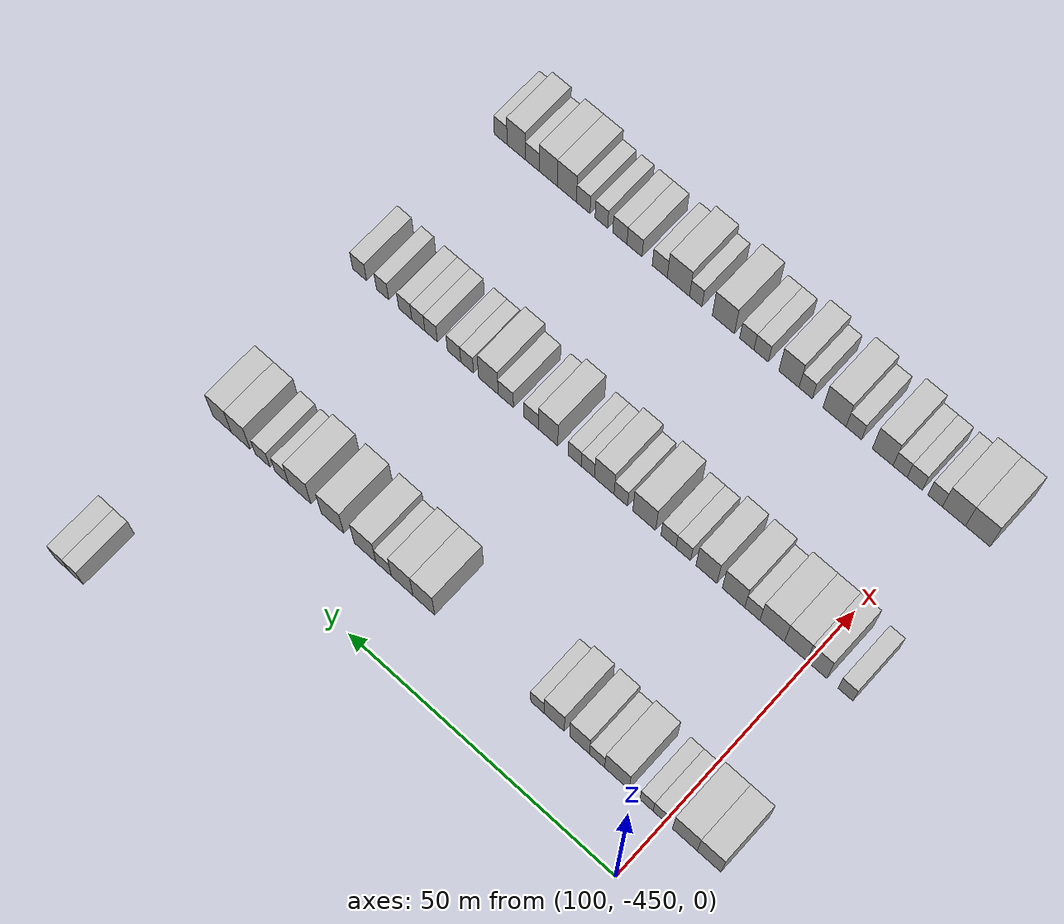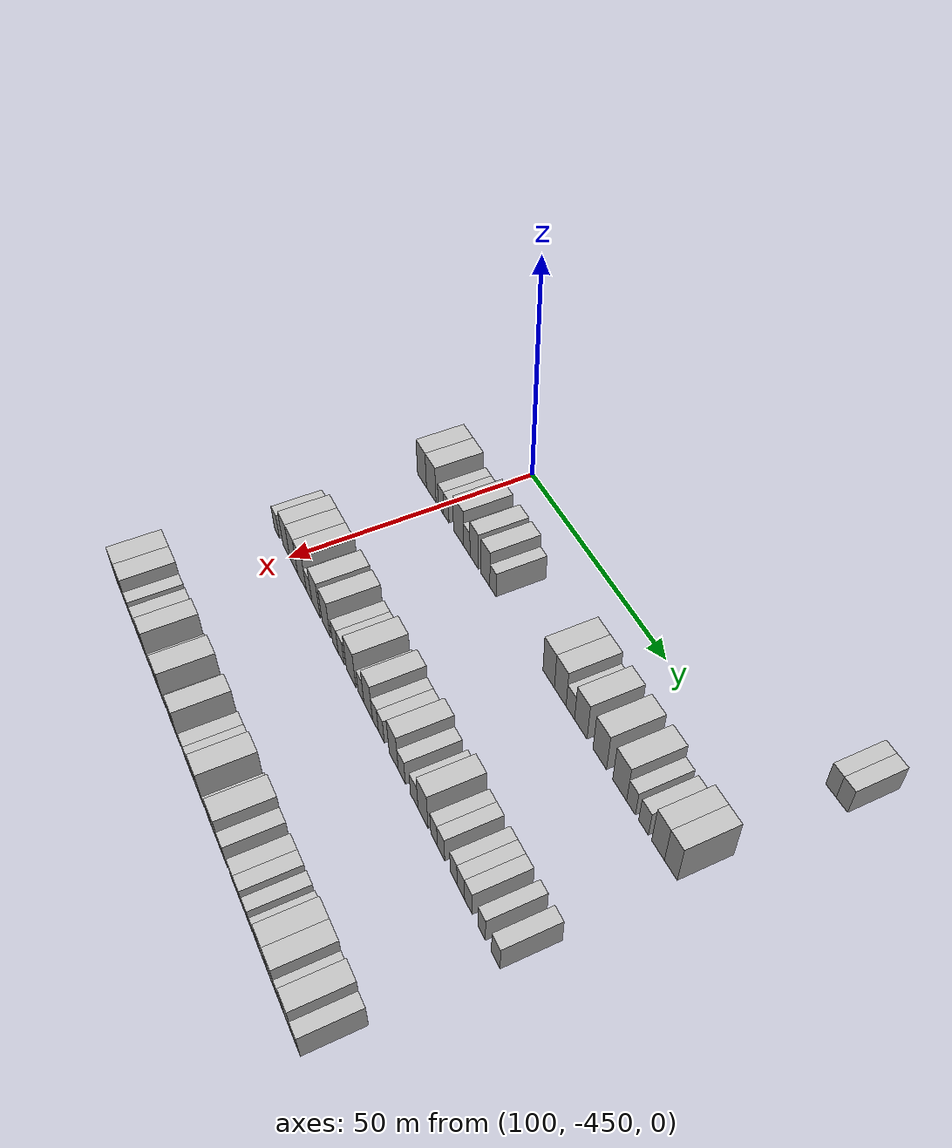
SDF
<sdf version="1.6">
 <world name="default">
  <model name="building_484">
   <static>1</static>
   <pose>85.0000 -366.2962 0 0.000000 0.000000 0.000000</pose>
   <link name="link">
    <pose>0 0 3.00 0 0 0</pose>
    <collision name="collision"><geometry><box><size>10.0000 2.7749 6.0000</size></box></geometry></collision>
    <visual name="visual">
     <cast_shadows>0</cast_shadows>
     <geometry><box><size>10.0000 2.7749 6.0000</size></box></geometry>
     <material>
      <script>
       <uri>model://HANNAS_wall/materials/scripts</uri>
       <uri>model://HANNAS_wall/materials/textures</uri>
       <name>vrc/HANNAS_wall</name>
      </script>
     </material>
    </visual>
   </link>
  </model>
  <model name="building_485">
   <static>1</static>
   <pose>85.0000 -363.4157 0 0.000000 0.000000 0.000000</pose>
   <link name="link">
    <pose>0 0 3.00 0 0 0</pose>
    <collision name="collision"><geometry><box><size>10.0000 2.9860 6.0000</size></box></geometry></collision>
    <visual name="visual">
     <cast_shadows>0</cast_shadows>
     <geometry><box><size>10.0000 2.9860 6.0000</size></box></geometry>
     <material>
      <script>
       <uri>model://HANNAS_wall/materials/scripts</uri>
       <uri>model://HANNAS_wall/materials/textures</uri>
       <name>vrc/HANNAS_wall</name>
      </script>
     </material>
    </visual>
   </link>
  </model>
  <model name="building_696">
   <static>1</static>
   <pose>115.0000 -457.8770 0 0.000000 0.000000 0.000000</pose>
   <link name="link">
    <pose>0 0 4.50 0 0 0</pose>
    <collision name="collision"><geometry><box><size>10.0000 4.2461 9.0000</size></box></geometry></collision>
    <visual name="visual">
     <cast_shadows>0</cast_shadows>
     <geometry><box><size>10.0000 4.2461 9.0000</size></box></geometry>
     <material>
      <script>
       <uri>model://HANNAS_wall/materials/scripts</uri>
       <uri>model://HANNAS_wall/materials/textures</uri>
       <name>vrc/HANNAS_wall</name>
      </script>
     </material>
    </visual>
   </link>
  </model>
  <model name="building_697">
   <static>1</static>
   <pose>115.0000 -453.5131 0 0.000000 0.000000 0.000000</pose>
   <link name="link">
    <pose>0 0 4.50 0 0 0</pose>
    <collision name="collision"><geometry><box><size>10.0000 4.4817 9.0000</size></box></geometry></collision>
    <visual name="visual">
     <cast_shadows>0</cast_shadows>
     <geometry><box><size>10.0000 4.4817 9.0000</size></box></geometry>
     <material>
      <script>
       <uri>model://HANNAS_wall/materials/scripts</uri>
       <uri>model://HANNAS_wall/materials/textures</uri>
       <name>vrc/HANNAS_wall</name>
      </script>
     </material>
    </visual>
   </link>
  </model>
  <model name="building_698">
   <static>1</static>
   <pose>115.0000 -449.0188 0 0.000000 0.000000 0.000000</pose>
   <link name="link">
    <pose>0 0 3.00 0 0 0</pose>
    <collision name="collision"><geometry><box><size>10.0000 2.5068 6.0000</size></box></geometry></collision>
    <visual name="visual">
     <cast_shadows>0</cast_shadows>
     <geometry><box><size>10.0000 2.5068 6.0000</size></box></geometry>
     <material>
      <script>
       <uri>model://HANNAS_wall/materials/scripts</uri>
       <uri>model://HANNAS_wall/materials/textures</uri>
       <name>vrc/HANNAS_wall</name>
      </script>
     </material>
    </visual>
   </link>
  </model>
  <model name="building_699">
   <static>1</static>
   <pose>115.0000 -446.5547 0 0.000000 0.000000 0.000000</pose>
   <link name="link">
    <pose>0 0 3.00 0 0 0</pose>
    <collision name="collision"><geometry><box><size>10.0000 2.4214 6.0000</size></box></geometry></collision>
    <visual name="visual">
     <cast_shadows>0</cast_shadows>
     <geometry><box><size>10.0000 2.4214 6.0000</size></box></geometry>
     <material>
      <script>
       <uri>model://HANNAS_wall/materials/scripts</uri>
       <uri>model://HANNAS_wall/materials/textures</uri>
       <name>vrc/HANNAS_wall</name>
      </script>
     </material>
    </visual>
   </link>
  </model>
  <model name="building_700">
   <static>1</static>
   <pose>115.0000 -441.1186 0 0.000000 0.000000 0.000000</pose>
   <link name="link">
    <pose>0 0 4.50 0 0 0</pose>
    <collision name="collision"><geometry><box><size>10.0000 4.4510 9.0000</size></box></geometry></collision>
    <visual name="visual">
     <cast_shadows>0</cast_shadows>
     <geometry><box><size>10.0000 4.4510 9.0000</size></box></geometry>
     <material>
      <script>
       <uri>model://HANNAS_wall/materials/scripts</uri>
       <uri>model://HANNAS_wall/materials/textures</uri>
       <name>vrc/HANNAS_wall</name>
      </script>
     </material>
    </visual>
   </link>
  </model>
  <model name="building_701">
   <static>1</static>
   <pose>115.0000 -437.4976 0 0.000000 0.000000 0.000000</pose>
   <link name="link">
    <pose>0 0 3.00 0 0 0</pose>
    <collision name="collision"><geometry><box><size>10.0000 2.7910 6.0000</size></box></geometry></collision>
    <visual name="visual">
     <cast_shadows>0</cast_shadows>
     <geometry><box><size>10.0000 2.7910 6.0000</size></box></geometry>
     <material>
      <script>
       <uri>model://HANNAS_wall/materials/scripts</uri>
       <uri>model://HANNAS_wall/materials/textures</uri>
       <name>vrc/HANNAS_wall</name>
      </script>
     </material>
    </visual>
   </link>
  </model>
  <model name="building_702">
   <static>1</static>
   <pose>115.0000 -434.2840 0 0.000000 0.000000 0.000000</pose>
   <link name="link">
    <pose>0 0 4.50 0 0 0</pose>
    <collision name="collision"><geometry><box><size>10.0000 3.6361 9.0000</size></box></geometry></collision>
    <visual name="visual">
     <cast_shadows>0</cast_shadows>
     <geometry><box><size>10.0000 3.6361 9.0000</size></box></geometry>
     <material>
      <script>
       <uri>model://HANNAS_wall/materials/scripts</uri>
       <uri>model://HANNAS_wall/materials/textures</uri>
       <name>vrc/HANNAS_wall</name>
      </script>
     </material>
    </visual>
   </link>
  </model>
  <model name="building_703">
   <static>1</static>
   <pose>115.0000 -429.6136 0 0.000000 0.000000 0.000000</pose>
   <link name="link">
    <pose>0 0 4.50 0 0 0</pose>
    <collision name="collision"><geometry><box><size>10.0000 3.7047 9.0000</size></box></geometry></collision>
    <visual name="visual">
     <cast_shadows>0</cast_shadows>
     <geometry><box><size>10.0000 3.7047 9.0000</size></box></geometry>
     <material>
      <script>
       <uri>model://HANNAS_wall/materials/scripts</uri>
       <uri>model://HANNAS_wall/materials/textures</uri>
       <name>vrc/HANNAS_wall</name>
      </script>
     </material>
    </visual>
   </link>
  </model>
  <model name="building_704">
   <static>1</static>
   <pose>115.0000 -426.4851 0 0.000000 0.000000 0.000000</pose>
   <link name="link">
    <pose>0 0 3.00 0 0 0</pose>
    <collision name="collision"><geometry><box><size>10.0000 2.5523 6.0000</size></box></geometry></collision>
    <visual name="visual">
     <cast_shadows>0</cast_shadows>
     <geometry><box><size>10.0000 2.5523 6.0000</size></box></geometry>
     <material>
      <script>
       <uri>model://HANNAS_wall/materials/scripts</uri>
       <uri>model://HANNAS_wall/materials/textures</uri>
       <name>vrc/HANNAS_wall</name>
      </script>
     </material>
    </visual>
   </link>
  </model>
  <model name="building_705">
   <static>1</static>
   <pose>115.0000 -404.9400 0 0.000000 0.000000 0.000000</pose>
   <link name="link">
    <pose>0 0 4.50 0 0 0</pose>
    <collision name="collision"><geometry><box><size>10.0000 4.1793 9.0000</size></box></geometry></collision>
    <visual name="visual">
     <cast_shadows>0</cast_shadows>
     <geometry><box><size>10.0000 4.1793 9.0000</size></box></geometry>
     <material>
      <script>
       <uri>model://HANNAS_wall/materials/scripts</uri>
       <uri>model://HANNAS_wall/materials/textures</uri>
       <name>vrc/HANNAS_wall</name>
      </script>
     </material>
    </visual>
   </link>
  </model>
  <model name="building_706">
   <static>1</static>
   <pose>115.0000 -400.7705 0 0.000000 0.000000 0.000000</pose>
   <link name="link">
    <pose>0 0 4.50 0 0 0</pose>
    <collision name="collision"><geometry><box><size>10.0000 4.1598 9.0000</size></box></geometry></collision>
    <visual name="visual">
     <cast_shadows>0</cast_shadows>
     <geometry><box><size>10.0000 4.1598 9.0000</size></box></geometry>
     <material>
      <script>
       <uri>model://HANNAS_wall/materials/scripts</uri>
       <uri>model://HANNAS_wall/materials/textures</uri>
       <name>vrc/HANNAS_wall</name>
      </script>
     </material>
    </visual>
   </link>
  </model>
  <model name="building_707">
   <static>1</static>
   <pose>115.0000 -397.2098 0 0.000000 0.000000 0.000000</pose>
   <link name="link">
    <pose>0 0 3.00 0 0 0</pose>
    <collision name="collision"><geometry><box><size>10.0000 2.9615 6.0000</size></box></geometry></collision>
    <visual name="visual">
     <cast_shadows>0</cast_shadows>
     <geometry><box><size>10.0000 2.9615 6.0000</size></box></geometry>
     <material>
      <script>
       <uri>model://HANNAS_wall/materials/scripts</uri>
       <uri>model://HANNAS_wall/materials/textures</uri>
       <name>vrc/HANNAS_wall</name>
      </script>
     </material>
    </visual>
   </link>
  </model>
  <model name="building_708">
   <static>1</static>
   <pose>115.0000 -393.5861 0 0.000000 0.000000 0.000000</pose>
   <link name="link">
    <pose>0 0 4.50 0 0 0</pose>
    <collision name="collision"><geometry><box><size>10.0000 4.2858 9.0000</size></box></geometry></collision>
    <visual name="visual">
     <cast_shadows>0</cast_shadows>
     <geometry><box><size>10.0000 4.2858 9.0000</size></box></geometry>
     <material>
      <script>
       <uri>model://HANNAS_wall/materials/scripts</uri>
       <uri>model://HANNAS_wall/materials/textures</uri>
       <name>vrc/HANNAS_wall</name>
      </script>
     </material>
    </visual>
   </link>
  </model>
  <model name="building_709">
   <static>1</static>
   <pose>115.0000 -387.2088 0 0.000000 0.000000 0.000000</pose>
   <link name="link">
    <pose>0 0 4.50 0 0 0</pose>
    <collision name="collision"><geometry><box><size>10.0000 4.4688 9.0000</size></box></geometry></collision>
    <visual name="visual">
     <cast_shadows>0</cast_shadows>
     <geometry><box><size>10.0000 4.4688 9.0000</size></box></geometry>
     <material>
      <script>
       <uri>model://HANNAS_wall/materials/scripts</uri>
       <uri>model://HANNAS_wall/materials/textures</uri>
       <name>vrc/HANNAS_wall</name>
      </script>
     </material>
    </visual>
   </link>
  </model>
  <model name="building_710">
   <static>1</static>
   <pose>115.0000 -380.7611 0 0.000000 0.000000 0.000000</pose>
   <link name="link">
    <pose>0 0 4.50 0 0 0</pose>
    <collision name="collision"><geometry><box><size>10.0000 4.4267 9.0000</size></box></geometry></collision>
    <visual name="visual">
     <cast_shadows>0</cast_shadows>
     <geometry><box><size>10.0000 4.4267 9.0000</size></box></geometry>
     <material>
      <script>
       <uri>model://HANNAS_wall/materials/scripts</uri>
       <uri>model://HANNAS_wall/materials/textures</uri>
       <name>vrc/HANNAS_wall</name>
      </script>
     </material>
    </visual>
   </link>
  </model>
  <model name="building_711">
   <static>1</static>
   <pose>115.0000 -377.1777 0 0.000000 0.000000 0.000000</pose>
   <link name="link">
    <pose>0 0 3.00 0 0 0</pose>
    <collision name="collision"><geometry><box><size>10.0000 2.7401 6.0000</size></box></geometry></collision>
    <visual name="visual">
     <cast_shadows>0</cast_shadows>
     <geometry><box><size>10.0000 2.7401 6.0000</size></box></geometry>
     <material>
      <script>
       <uri>model://HANNAS_wall/materials/scripts</uri>
       <uri>model://HANNAS_wall/materials/textures</uri>
       <name>vrc/HANNAS_wall</name>
      </script>
     </material>
    </visual>
   </link>
  </model>
  <model name="building_712">
   <static>1</static>
   <pose>115.0000 -373.3367 0 0.000000 0.000000 0.000000</pose>
   <link name="link">
    <pose>0 0 3.00 0 0 0</pose>
    <collision name="collision"><geometry><box><size>10.0000 2.9419 6.0000</size></box></geometry></collision>
    <visual name="visual">
     <cast_shadows>0</cast_shadows>
     <geometry><box><size>10.0000 2.9419 6.0000</size></box></geometry>
     <material>
      <script>
       <uri>model://HANNAS_wall/materials/scripts</uri>
       <uri>model://HANNAS_wall/materials/textures</uri>
       <name>vrc/HANNAS_wall</name>
      </script>
     </material>
    </visual>
   </link>
  </model>
  <model name="building_713">
   <static>1</static>
   <pose>115.0000 -368.9628 0 0.000000 0.000000 0.000000</pose>
   <link name="link">
    <pose>0 0 4.50 0 0 0</pose>
    <collision name="collision"><geometry><box><size>10.0000 3.8059 9.0000</size></box></geometry></collision>
    <visual name="visual">
     <cast_shadows>0</cast_shadows>
     <geometry><box><size>10.0000 3.8059 9.0000</size></box></geometry>
     <material>
      <script>
       <uri>model://HANNAS_wall/materials/scripts</uri>
       <uri>model://HANNAS_wall/materials/textures</uri>
       <name>vrc/HANNAS_wall</name>
      </script>
     </material>
    </visual>
   </link>
  </model>
  <model name="building_714">
   <static>1</static>
   <pose>115.0000 -365.2025 0 0.000000 0.000000 0.000000</pose>
   <link name="link">
    <pose>0 0 4.50 0 0 0</pose>
    <collision name="collision"><geometry><box><size>10.0000 3.7148 9.0000</size></box></geometry></collision>
    <visual name="visual">
     <cast_shadows>0</cast_shadows>
     <geometry><box><size>10.0000 3.7148 9.0000</size></box></geometry>
     <material>
      <script>
       <uri>model://HANNAS_wall/materials/scripts</uri>
       <uri>model://HANNAS_wall/materials/textures</uri>
       <name>vrc/HANNAS_wall</name>
      </script>
     </material>
    </visual>
   </link>
  </model>
  <model name="building_925">
   <static>1</static>
   <pose>145.0000 -456.6500 0 0.000000 0.000000 0.000000</pose>
   <link name="link">
    <pose>0 0 3.00 0 0 0</pose>
    <collision name="collision"><geometry><box><size>10.0000 2.7000 6.0000</size></box></geometry></collision>
    <visual name="visual">
     <cast_shadows>0</cast_shadows>
     <geometry><box><size>10.0000 2.7000 6.0000</size></box></geometry>
     <material>
      <script>
       <uri>model://HANNAS_wall/materials/scripts</uri>
       <uri>model://HANNAS_wall/materials/textures</uri>
       <name>vrc/HANNAS_wall</name>
      </script>
     </material>
    </visual>
   </link>
  </model>
  <model name="building_926">
   <static>1</static>
   <pose>145.0000 -451.4515 0 0.000000 0.000000 0.000000</pose>
   <link name="link">
    <pose>0 0 4.50 0 0 0</pose>
    <collision name="collision"><geometry><box><size>10.0000 3.6971 9.0000</size></box></geometry></collision>
    <visual name="visual">
     <cast_shadows>0</cast_shadows>
     <geometry><box><size>10.0000 3.6971 9.0000</size></box></geometry>
     <material>
      <script>
       <uri>model://HANNAS_wall/materials/scripts</uri>
       <uri>model://HANNAS_wall/materials/textures</uri>
       <name>vrc/HANNAS_wall</name>
      </script>
     </material>
    </visual>
   </link>
  </model>
  <model name="building_927">
   <static>1</static>
   <pose>145.0000 -447.5651 0 0.000000 0.000000 0.000000</pose>
   <link name="link">
    <pose>0 0 4.50 0 0 0</pose>
    <collision name="collision"><geometry><box><size>10.0000 4.0757 9.0000</size></box></geometry></collision>
    <visual name="visual">
     <cast_shadows>0</cast_shadows>
     <geometry><box><size>10.0000 4.0757 9.0000</size></box></geometry>
     <material>
      <script>
       <uri>model://HANNAS_wall/materials/scripts</uri>
       <uri>model://HANNAS_wall/materials/textures</uri>
       <name>vrc/HANNAS_wall</name>
      </script>
     </material>
    </visual>
   </link>
  </model>
  <model name="building_928">
   <static>1</static>
   <pose>145.0000 -443.2787 0 0.000000 0.000000 0.000000</pose>
   <link name="link">
    <pose>0 0 4.50 0 0 0</pose>
    <collision name="collision"><geometry><box><size>10.0000 4.4973 9.0000</size></box></geometry></collision>
    <visual name="visual">
     <cast_shadows>0</cast_shadows>
     <geometry><box><size>10.0000 4.4973 9.0000</size></box></geometry>
     <material>
      <script>
       <uri>model://HANNAS_wall/materials/scripts</uri>
       <uri>model://HANNAS_wall/materials/textures</uri>
       <name>vrc/HANNAS_wall</name>
      </script>
     </material>
    </visual>
   </link>
  </model>
  <model name="building_929">
   <static>1</static>
   <pose>145.0000 -439.6331 0 0.000000 0.000000 0.000000</pose>
   <link name="link">
    <pose>0 0 3.00 0 0 0</pose>
    <collision name="collision"><geometry><box><size>10.0000 2.7938 6.0000</size></box></geometry></collision>
    <visual name="visual">
     <cast_shadows>0</cast_shadows>
     <geometry><box><size>10.0000 2.7938 6.0000</size></box></geometry>
     <material>
      <script>
       <uri>model://HANNAS_wall/materials/scripts</uri>
       <uri>model://HANNAS_wall/materials/textures</uri>
       <name>vrc/HANNAS_wall</name>
      </script>
     </material>
    </visual>
   </link>
  </model>
  <model name="building_930">
   <static>1</static>
   <pose>145.0000 -436.1610 0 0.000000 0.000000 0.000000</pose>
   <link name="link">
    <pose>0 0 4.50 0 0 0</pose>
    <collision name="collision"><geometry><box><size>10.0000 4.1504 9.0000</size></box></geometry></collision>
    <visual name="visual">
     <cast_shadows>0</cast_shadows>
     <geometry><box><size>10.0000 4.1504 9.0000</size></box></geometry>
     <material>
      <script>
       <uri>model://HANNAS_wall/materials/scripts</uri>
       <uri>model://HANNAS_wall/materials/textures</uri>
       <name>vrc/HANNAS_wall</name>
      </script>
     </material>
    </visual>
   </link>
  </model>
  <model name="building_931">
   <static>1</static>
   <pose>145.0000 -431.1343 0 0.000000 0.000000 0.000000</pose>
   <link name="link">
    <pose>0 0 4.50 0 0 0</pose>
    <collision name="collision"><geometry><box><size>10.0000 3.9031 9.0000</size></box></geometry></collision>
    <visual name="visual">
     <cast_shadows>0</cast_shadows>
     <geometry><box><size>10.0000 3.9031 9.0000</size></box></geometry>
     <material>
      <script>
       <uri>model://HANNAS_wall/materials/scripts</uri>
       <uri>model://HANNAS_wall/materials/textures</uri>
       <name>vrc/HANNAS_wall</name>
      </script>
     </material>
    </visual>
   </link>
  </model>
  <model name="building_932">
   <static>1</static>
   <pose>145.0000 -426.8087 0 0.000000 0.000000 0.000000</pose>
   <link name="link">
    <pose>0 0 3.00 0 0 0</pose>
    <collision name="collision"><geometry><box><size>10.0000 2.7481 6.0000</size></box></geometry></collision>
    <visual name="visual">
     <cast_shadows>0</cast_shadows>
     <geometry><box><size>10.0000 2.7481 6.0000</size></box></geometry>
     <material>
      <script>
       <uri>model://HANNAS_wall/materials/scripts</uri>
       <uri>model://HANNAS_wall/materials/textures</uri>
       <name>vrc/HANNAS_wall</name>
      </script>
     </material>
    </visual>
   </link>
  </model>
  <model name="building_933">
   <static>1</static>
   <pose>145.0000 -424.0215 0 0.000000 0.000000 0.000000</pose>
   <link name="link">
    <pose>0 0 3.00 0 0 0</pose>
    <collision name="collision"><geometry><box><size>10.0000 2.8261 6.0000</size></box></geometry></collision>
    <visual name="visual">
     <cast_shadows>0</cast_shadows>
     <geometry><box><size>10.0000 2.8261 6.0000</size></box></geometry>
     <material>
      <script>
       <uri>model://HANNAS_wall/materials/scripts</uri>
       <uri>model://HANNAS_wall/materials/textures</uri>
       <name>vrc/HANNAS_wall</name>
      </script>
     </material>
    </visual>
   </link>
  </model>
  <model name="building_934">
   <static>1</static>
   <pose>145.0000 -419.4421 0 0.000000 0.000000 0.000000</pose>
   <link name="link">
    <pose>0 0 4.50 0 0 0</pose>
    <collision name="collision"><geometry><box><size>10.0000 4.3327 9.0000</size></box></geometry></collision>
    <visual name="visual">
     <cast_shadows>0</cast_shadows>
     <geometry><box><size>10.0000 4.3327 9.0000</size></box></geometry>
     <material>
      <script>
       <uri>model://HANNAS_wall/materials/scripts</uri>
       <uri>model://HANNAS_wall/materials/textures</uri>
       <name>vrc/HANNAS_wall</name>
      </script>
     </material>
    </visual>
   </link>
  </model>
  <model name="building_935">
   <static>1</static>
   <pose>145.0000 -414.9980 0 0.000000 0.000000 0.000000</pose>
   <link name="link">
    <pose>0 0 3.00 0 0 0</pose>
    <collision name="collision"><geometry><box><size>10.0000 2.5554 6.0000</size></box></geometry></collision>
    <visual name="visual">
     <cast_shadows>0</cast_shadows>
     <geometry><box><size>10.0000 2.5554 6.0000</size></box></geometry>
     <material>
      <script>
       <uri>model://HANNAS_wall/materials/scripts</uri>
       <uri>model://HANNAS_wall/materials/textures</uri>
       <name>vrc/HANNAS_wall</name>
      </script>
     </material>
    </visual>
   </link>
  </model>
  <model name="building_936">
   <static>1</static>
   <pose>145.0000 -411.8497 0 0.000000 0.000000 0.000000</pose>
   <link name="link">
    <pose>0 0 4.50 0 0 0</pose>
    <collision name="collision"><geometry><box><size>10.0000 3.7412 9.0000</size></box></geometry></collision>
    <visual name="visual">
     <cast_shadows>0</cast_shadows>
     <geometry><box><size>10.0000 3.7412 9.0000</size></box></geometry>
     <material>
      <script>
       <uri>model://HANNAS_wall/materials/scripts</uri>
       <uri>model://HANNAS_wall/materials/textures</uri>
       <name>vrc/HANNAS_wall</name>
      </script>
     </material>
    </visual>
   </link>
  </model>
  <model name="building_937">
   <static>1</static>
   <pose>145.0000 -408.7059 0 0.000000 0.000000 0.000000</pose>
   <link name="link">
    <pose>0 0 3.00 0 0 0</pose>
    <collision name="collision"><geometry><box><size>10.0000 2.5464 6.0000</size></box></geometry></collision>
    <visual name="visual">
     <cast_shadows>0</cast_shadows>
     <geometry><box><size>10.0000 2.5464 6.0000</size></box></geometry>
     <material>
      <script>
       <uri>model://HANNAS_wall/materials/scripts</uri>
       <uri>model://HANNAS_wall/materials/textures</uri>
       <name>vrc/HANNAS_wall</name>
      </script>
     </material>
    </visual>
   </link>
  </model>
  <model name="building_938">
   <static>1</static>
   <pose>145.0000 -406.1874 0 0.000000 0.000000 0.000000</pose>
   <link name="link">
    <pose>0 0 3.00 0 0 0</pose>
    <collision name="collision"><geometry><box><size>10.0000 2.4905 6.0000</size></box></geometry></collision>
    <visual name="visual">
     <cast_shadows>0</cast_shadows>
     <geometry><box><size>10.0000 2.4905 6.0000</size></box></geometry>
     <material>
      <script>
       <uri>model://HANNAS_wall/materials/scripts</uri>
       <uri>model://HANNAS_wall/materials/textures</uri>
       <name>vrc/HANNAS_wall</name>
      </script>
     </material>
    </visual>
   </link>
  </model>
  <model name="building_939">
   <static>1</static>
   <pose>145.0000 -401.0676 0 0.000000 0.000000 0.000000</pose>
   <link name="link">
    <pose>0 0 4.50 0 0 0</pose>
    <collision name="collision"><geometry><box><size>10.0000 3.7492 9.0000</size></box></geometry></collision>
    <visual name="visual">
     <cast_shadows>0</cast_shadows>
     <geometry><box><size>10.0000 3.7492 9.0000</size></box></geometry>
     <material>
      <script>
       <uri>model://HANNAS_wall/materials/scripts</uri>
       <uri>model://HANNAS_wall/materials/textures</uri>
       <name>vrc/HANNAS_wall</name>
      </script>
     </material>
    </visual>
   </link>
  </model>
  <model name="building_940">
   <static>1</static>
   <pose>145.0000 -397.7646 0 0.000000 0.000000 0.000000</pose>
   <link name="link">
    <pose>0 0 3.00 0 0 0</pose>
    <collision name="collision"><geometry><box><size>10.0000 2.8567 6.0000</size></box></geometry></collision>
    <visual name="visual">
     <cast_shadows>0</cast_shadows>
     <geometry><box><size>10.0000 2.8567 6.0000</size></box></geometry>
     <material>
      <script>
       <uri>model://HANNAS_wall/materials/scripts</uri>
       <uri>model://HANNAS_wall/materials/textures</uri>
       <name>vrc/HANNAS_wall</name>
      </script>
     </material>
    </visual>
   </link>
  </model>
  <model name="building_941">
   <static>1</static>
   <pose>145.0000 -392.8453 0 0.000000 0.000000 0.000000</pose>
   <link name="link">
    <pose>0 0 3.00 0 0 0</pose>
    <collision name="collision"><geometry><box><size>10.0000 2.9819 6.0000</size></box></geometry></collision>
    <visual name="visual">
     <cast_shadows>0</cast_shadows>
     <geometry><box><size>10.0000 2.9819 6.0000</size></box></geometry>
     <material>
      <script>
       <uri>model://HANNAS_wall/materials/scripts</uri>
       <uri>model://HANNAS_wall/materials/textures</uri>
       <name>vrc/HANNAS_wall</name>
      </script>
     </material>
    </visual>
   </link>
  </model>
  <model name="building_942">
   <static>1</static>
   <pose>145.0000 -389.4294 0 0.000000 0.000000 0.000000</pose>
   <link name="link">
    <pose>0 0 4.50 0 0 0</pose>
    <collision name="collision"><geometry><box><size>10.0000 3.8499 9.0000</size></box></geometry></collision>
    <visual name="visual">
     <cast_shadows>0</cast_shadows>
     <geometry><box><size>10.0000 3.8499 9.0000</size></box></geometry>
     <material>
      <script>
       <uri>model://HANNAS_wall/materials/scripts</uri>
       <uri>model://HANNAS_wall/materials/textures</uri>
       <name>vrc/HANNAS_wall</name>
      </script>
     </material>
    </visual>
   </link>
  </model>
  <model name="building_943">
   <static>1</static>
   <pose>145.0000 -385.2408 0 0.000000 0.000000 0.000000</pose>
   <link name="link">
    <pose>0 0 3.00 0 0 0</pose>
    <collision name="collision"><geometry><box><size>10.0000 2.5273 6.0000</size></box></geometry></collision>
    <visual name="visual">
     <cast_shadows>0</cast_shadows>
     <geometry><box><size>10.0000 2.5273 6.0000</size></box></geometry>
     <material>
      <script>
       <uri>model://HANNAS_wall/materials/scripts</uri>
       <uri>model://HANNAS_wall/materials/textures</uri>
       <name>vrc/HANNAS_wall</name>
      </script>
     </material>
    </visual>
   </link>
  </model>
  <model name="building_944">
   <static>1</static>
   <pose>145.0000 -382.6505 0 0.000000 0.000000 0.000000</pose>
   <link name="link">
    <pose>0 0 3.00 0 0 0</pose>
    <collision name="collision"><geometry><box><size>10.0000 2.6532 6.0000</size></box></geometry></collision>
    <visual name="visual">
     <cast_shadows>0</cast_shadows>
     <geometry><box><size>10.0000 2.6532 6.0000</size></box></geometry>
     <material>
      <script>
       <uri>model://HANNAS_wall/materials/scripts</uri>
       <uri>model://HANNAS_wall/materials/textures</uri>
       <name>vrc/HANNAS_wall</name>
      </script>
     </material>
    </visual>
   </link>
  </model>
  <model name="building_945">
   <static>1</static>
   <pose>145.0000 -378.0824 0 0.000000 0.000000 0.000000</pose>
   <link name="link">
    <pose>0 0 3.00 0 0 0</pose>
    <collision name="collision"><geometry><box><size>10.0000 2.4831 6.0000</size></box></geometry></collision>
    <visual name="visual">
     <cast_shadows>0</cast_shadows>
     <geometry><box><size>10.0000 2.4831 6.0000</size></box></geometry>
     <material>
      <script>
       <uri>model://HANNAS_wall/materials/scripts</uri>
       <uri>model://HANNAS_wall/materials/textures</uri>
       <name>vrc/HANNAS_wall</name>
      </script>
     </material>
    </visual>
   </link>
  </model>
  <model name="building_946">
   <static>1</static>
   <pose>145.0000 -375.5362 0 0.000000 0.000000 0.000000</pose>
   <link name="link">
    <pose>0 0 3.00 0 0 0</pose>
    <collision name="collision"><geometry><box><size>10.0000 2.6094 6.0000</size></box></geometry></collision>
    <visual name="visual">
     <cast_shadows>0</cast_shadows>
     <geometry><box><size>10.0000 2.6094 6.0000</size></box></geometry>
     <material>
      <script>
       <uri>model://HANNAS_wall/materials/scripts</uri>
       <uri>model://HANNAS_wall/materials/textures</uri>
       <name>vrc/HANNAS_wall</name>
      </script>
     </material>
    </visual>
   </link>
  </model>
  <model name="building_947">
   <static>1</static>
   <pose>145.0000 -372.9120 0 0.000000 0.000000 0.000000</pose>
   <link name="link">
    <pose>0 0 3.00 0 0 0</pose>
    <collision name="collision"><geometry><box><size>10.0000 2.6388 6.0000</size></box></geometry></collision>
    <visual name="visual">
     <cast_shadows>0</cast_shadows>
     <geometry><box><size>10.0000 2.6388 6.0000</size></box></geometry>
     <material>
      <script>
       <uri>model://HANNAS_wall/materials/scripts</uri>
       <uri>model://HANNAS_wall/materials/textures</uri>
       <name>vrc/HANNAS_wall</name>
      </script>
     </material>
    </visual>
   </link>
  </model>
  <model name="building_948">
   <static>1</static>
   <pose>145.0000 -368.3521 0 0.000000 0.000000 0.000000</pose>
   <link name="link">
    <pose>0 0 3.00 0 0 0</pose>
    <collision name="collision"><geometry><box><size>10.0000 2.4810 6.0000</size></box></geometry></collision>
    <visual name="visual">
     <cast_shadows>0</cast_shadows>
     <geometry><box><size>10.0000 2.4810 6.0000</size></box></geometry>
     <material>
      <script>
       <uri>model://HANNAS_wall/materials/scripts</uri>
       <uri>model://HANNAS_wall/materials/textures</uri>
       <name>vrc/HANNAS_wall</name>
      </script>
     </material>
    </visual>
   </link>
  </model>
  <model name="building_949">
   <static>1</static>
   <pose>145.0000 -363.6995 0 0.000000 0.000000 0.000000</pose>
   <link name="link">
    <pose>0 0 3.00 0 0 0</pose>
    <collision name="collision"><geometry><box><size>10.0000 2.8242 6.0000</size></box></geometry></collision>
    <visual name="visual">
     <cast_shadows>0</cast_shadows>
     <geometry><box><size>10.0000 2.8242 6.0000</size></box></geometry>
     <material>
      <script>
       <uri>model://HANNAS_wall/materials/scripts</uri>
       <uri>model://HANNAS_wall/materials/textures</uri>
       <name>vrc/HANNAS_wall</name>
      </script>
     </material>
    </visual>
   </link>
  </model>
  <model name="building_1138">
   <static>1</static>
   <pose>175.0000 -455.7658 0 0.000000 0.000000 0.000000</pose>
   <link name="link">
    <pose>0 0 4.50 0 0 0</pose>
    <collision name="collision"><geometry><box><size>10.0000 4.4685 9.0000</size></box></geometry></collision>
    <visual name="visual">
     <cast_shadows>0</cast_shadows>
     <geometry><box><size>10.0000 4.4685 9.0000</size></box></geometry>
     <material>
      <script>
       <uri>model://HANNAS_wall/materials/scripts</uri>
       <uri>model://HANNAS_wall/materials/textures</uri>
       <name>vrc/HANNAS_wall</name>
      </script>
     </material>
    </visual>
   </link>
  </model>
  <model name="building_1139">
   <static>1</static>
   <pose>175.0000 -451.4169 0 0.000000 0.000000 0.000000</pose>
   <link name="link">
    <pose>0 0 4.50 0 0 0</pose>
    <collision name="collision"><geometry><box><size>10.0000 4.2292 9.0000</size></box></geometry></collision>
    <visual name="visual">
     <cast_shadows>0</cast_shadows>
     <geometry><box><size>10.0000 4.2292 9.0000</size></box></geometry>
     <material>
      <script>
       <uri>model://HANNAS_wall/materials/scripts</uri>
       <uri>model://HANNAS_wall/materials/textures</uri>
       <name>vrc/HANNAS_wall</name>
      </script>
     </material>
    </visual>
   </link>
  </model>
  <model name="building_1140">
   <static>1</static>
   <pose>175.0000 -447.9690 0 0.000000 0.000000 0.000000</pose>
   <link name="link">
    <pose>0 0 3.00 0 0 0</pose>
    <collision name="collision"><geometry><box><size>10.0000 2.6666 6.0000</size></box></geometry></collision>
    <visual name="visual">
     <cast_shadows>0</cast_shadows>
     <geometry><box><size>10.0000 2.6666 6.0000</size></box></geometry>
     <material>
      <script>
       <uri>model://HANNAS_wall/materials/scripts</uri>
       <uri>model://HANNAS_wall/materials/textures</uri>
       <name>vrc/HANNAS_wall</name>
      </script>
     </material>
    </visual>
   </link>
  </model>
  <model name="building_1141">
   <static>1</static>
   <pose>175.0000 -444.2250 0 0.000000 0.000000 0.000000</pose>
   <link name="link">
    <pose>0 0 3.00 0 0 0</pose>
    <collision name="collision"><geometry><box><size>10.0000 2.8213 6.0000</size></box></geometry></collision>
    <visual name="visual">
     <cast_shadows>0</cast_shadows>
     <geometry><box><size>10.0000 2.8213 6.0000</size></box></geometry>
     <material>
      <script>
       <uri>model://HANNAS_wall/materials/scripts</uri>
       <uri>model://HANNAS_wall/materials/textures</uri>
       <name>vrc/HANNAS_wall</name>
      </script>
     </material>
    </visual>
   </link>
  </model>
  <model name="building_1142">
   <static>1</static>
   <pose>175.0000 -441.5120 0 0.000000 0.000000 0.000000</pose>
   <link name="link">
    <pose>0 0 3.00 0 0 0</pose>
    <collision name="collision"><geometry><box><size>10.0000 2.6048 6.0000</size></box></geometry></collision>
    <visual name="visual">
     <cast_shadows>0</cast_shadows>
     <geometry><box><size>10.0000 2.6048 6.0000</size></box></geometry>
     <material>
      <script>
       <uri>model://HANNAS_wall/materials/scripts</uri>
       <uri>model://HANNAS_wall/materials/textures</uri>
       <name>vrc/HANNAS_wall</name>
      </script>
     </material>
    </visual>
   </link>
  </model>
  <model name="building_1143">
   <static>1</static>
   <pose>175.0000 -438.2920 0 0.000000 0.000000 0.000000</pose>
   <link name="link">
    <pose>0 0 4.50 0 0 0</pose>
    <collision name="collision"><geometry><box><size>10.0000 3.8352 9.0000</size></box></geometry></collision>
    <visual name="visual">
     <cast_shadows>0</cast_shadows>
     <geometry><box><size>10.0000 3.8352 9.0000</size></box></geometry>
     <material>
      <script>
       <uri>model://HANNAS_wall/materials/scripts</uri>
       <uri>model://HANNAS_wall/materials/textures</uri>
       <name>vrc/HANNAS_wall</name>
      </script>
     </material>
    </visual>
   </link>
  </model>
  <model name="building_1144">
   <static>1</static>
   <pose>175.0000 -432.9271 0 0.000000 0.000000 0.000000</pose>
   <link name="link">
    <pose>0 0 3.00 0 0 0</pose>
    <collision name="collision"><geometry><box><size>10.0000 2.8946 6.0000</size></box></geometry></collision>
    <visual name="visual">
     <cast_shadows>0</cast_shadows>
     <geometry><box><size>10.0000 2.8946 6.0000</size></box></geometry>
     <material>
      <script>
       <uri>model://HANNAS_wall/materials/scripts</uri>
       <uri>model://HANNAS_wall/materials/textures</uri>
       <name>vrc/HANNAS_wall</name>
      </script>
     </material>
    </visual>
   </link>
  </model>
  <model name="building_1145">
   <static>1</static>
   <pose>175.0000 -429.3081 0 0.000000 0.000000 0.000000</pose>
   <link name="link">
    <pose>0 0 4.50 0 0 0</pose>
    <collision name="collision"><geometry><box><size>10.0000 4.3433 9.0000</size></box></geometry></collision>
    <visual name="visual">
     <cast_shadows>0</cast_shadows>
     <geometry><box><size>10.0000 4.3433 9.0000</size></box></geometry>
     <material>
      <script>
       <uri>model://HANNAS_wall/materials/scripts</uri>
       <uri>model://HANNAS_wall/materials/textures</uri>
       <name>vrc/HANNAS_wall</name>
      </script>
     </material>
    </visual>
   </link>
  </model>
  <model name="building_1146">
   <static>1</static>
   <pose>175.0000 -423.8743 0 0.000000 0.000000 0.000000</pose>
   <link name="link">
    <pose>0 0 3.00 0 0 0</pose>
    <collision name="collision"><geometry><box><size>10.0000 2.5243 6.0000</size></box></geometry></collision>
    <visual name="visual">
     <cast_shadows>0</cast_shadows>
     <geometry><box><size>10.0000 2.5243 6.0000</size></box></geometry>
     <material>
      <script>
       <uri>model://HANNAS_wall/materials/scripts</uri>
       <uri>model://HANNAS_wall/materials/textures</uri>
       <name>vrc/HANNAS_wall</name>
      </script>
     </material>
    </visual>
   </link>
  </model>
  <model name="building_1147">
   <static>1</static>
   <pose>175.0000 -420.6954 0 0.000000 0.000000 0.000000</pose>
   <link name="link">
    <pose>0 0 4.50 0 0 0</pose>
    <collision name="collision"><geometry><box><size>10.0000 3.8335 9.0000</size></box></geometry></collision>
    <visual name="visual">
     <cast_shadows>0</cast_shadows>
     <geometry><box><size>10.0000 3.8335 9.0000</size></box></geometry>
     <material>
      <script>
       <uri>model://HANNAS_wall/materials/scripts</uri>
       <uri>model://HANNAS_wall/materials/textures</uri>
       <name>vrc/HANNAS_wall</name>
      </script>
     </material>
    </visual>
   </link>
  </model>
  <model name="building_1148">
   <static>1</static>
   <pose>175.0000 -415.4001 0 0.000000 0.000000 0.000000</pose>
   <link name="link">
    <pose>0 0 3.00 0 0 0</pose>
    <collision name="collision"><geometry><box><size>10.0000 2.7571 6.0000</size></box></geometry></collision>
    <visual name="visual">
     <cast_shadows>0</cast_shadows>
     <geometry><box><size>10.0000 2.7571 6.0000</size></box></geometry>
     <material>
      <script>
       <uri>model://HANNAS_wall/materials/scripts</uri>
       <uri>model://HANNAS_wall/materials/textures</uri>
       <name>vrc/HANNAS_wall</name>
      </script>
     </material>
    </visual>
   </link>
  </model>
  <model name="building_1149">
   <static>1</static>
   <pose>175.0000 -412.6483 0 0.000000 0.000000 0.000000</pose>
   <link name="link">
    <pose>0 0 3.00 0 0 0</pose>
    <collision name="collision"><geometry><box><size>10.0000 2.7465 6.0000</size></box></geometry></collision>
    <visual name="visual">
     <cast_shadows>0</cast_shadows>
     <geometry><box><size>10.0000 2.7465 6.0000</size></box></geometry>
     <material>
      <script>
       <uri>model://HANNAS_wall/materials/scripts</uri>
       <uri>model://HANNAS_wall/materials/textures</uri>
       <name>vrc/HANNAS_wall</name>
      </script>
     </material>
    </visual>
   </link>
  </model>
  <model name="building_1150">
   <static>1</static>
   <pose>175.0000 -408.1490 0 0.000000 0.000000 0.000000</pose>
   <link name="link">
    <pose>0 0 4.50 0 0 0</pose>
    <collision name="collision"><geometry><box><size>10.0000 4.2521 9.0000</size></box></geometry></collision>
    <visual name="visual">
     <cast_shadows>0</cast_shadows>
     <geometry><box><size>10.0000 4.2521 9.0000</size></box></geometry>
     <material>
      <script>
       <uri>model://HANNAS_wall/materials/scripts</uri>
       <uri>model://HANNAS_wall/materials/textures</uri>
       <name>vrc/HANNAS_wall</name>
      </script>
     </material>
    </visual>
   </link>
  </model>
  <model name="building_1151">
   <static>1</static>
   <pose>175.0000 -402.8176 0 0.000000 0.000000 0.000000</pose>
   <link name="link">
    <pose>0 0 3.00 0 0 0</pose>
    <collision name="collision"><geometry><box><size>10.0000 2.4109 6.0000</size></box></geometry></collision>
    <visual name="visual">
     <cast_shadows>0</cast_shadows>
     <geometry><box><size>10.0000 2.4109 6.0000</size></box></geometry>
     <material>
      <script>
       <uri>model://HANNAS_wall/materials/scripts</uri>
       <uri>model://HANNAS_wall/materials/textures</uri>
       <name>vrc/HANNAS_wall</name>
      </script>
     </material>
    </visual>
   </link>
  </model>
  <model name="building_1152">
   <static>1</static>
   <pose>175.0000 -399.4330 0 0.000000 0.000000 0.000000</pose>
   <link name="link">
    <pose>0 0 4.50 0 0 0</pose>
    <collision name="collision"><geometry><box><size>10.0000 4.3582 9.0000</size></box></geometry></collision>
    <visual name="visual">
     <cast_shadows>0</cast_shadows>
     <geometry><box><size>10.0000 4.3582 9.0000</size></box></geometry>
     <material>
      <script>
       <uri>model://HANNAS_wall/materials/scripts</uri>
       <uri>model://HANNAS_wall/materials/textures</uri>
       <name>vrc/HANNAS_wall</name>
      </script>
     </material>
    </visual>
   </link>
  </model>
  <model name="building_1153">
   <static>1</static>
   <pose>175.0000 -395.7926 0 0.000000 0.000000 0.000000</pose>
   <link name="link">
    <pose>0 0 3.00 0 0 0</pose>
    <collision name="collision"><geometry><box><size>10.0000 2.9226 6.0000</size></box></geometry></collision>
    <visual name="visual">
     <cast_shadows>0</cast_shadows>
     <geometry><box><size>10.0000 2.9226 6.0000</size></box></geometry>
     <material>
      <script>
       <uri>model://HANNAS_wall/materials/scripts</uri>
       <uri>model://HANNAS_wall/materials/textures</uri>
       <name>vrc/HANNAS_wall</name>
      </script>
     </material>
    </visual>
   </link>
  </model>
  <model name="building_1154">
   <static>1</static>
   <pose>175.0000 -390.8424 0 0.000000 0.000000 0.000000</pose>
   <link name="link">
    <pose>0 0 3.00 0 0 0</pose>
    <collision name="collision"><geometry><box><size>10.0000 2.9778 6.0000</size></box></geometry></collision>
    <visual name="visual">
     <cast_shadows>0</cast_shadows>
     <geometry><box><size>10.0000 2.9778 6.0000</size></box></geometry>
     <material>
      <script>
       <uri>model://HANNAS_wall/materials/scripts</uri>
       <uri>model://HANNAS_wall/materials/textures</uri>
       <name>vrc/HANNAS_wall</name>
      </script>
     </material>
    </visual>
   </link>
  </model>
  <model name="building_1155">
   <static>1</static>
   <pose>175.0000 -387.9501 0 0.000000 0.000000 0.000000</pose>
   <link name="link">
    <pose>0 0 3.00 0 0 0</pose>
    <collision name="collision"><geometry><box><size>10.0000 2.8069 6.0000</size></box></geometry></collision>
    <visual name="visual">
     <cast_shadows>0</cast_shadows>
     <geometry><box><size>10.0000 2.8069 6.0000</size></box></geometry>
     <material>
      <script>
       <uri>model://HANNAS_wall/materials/scripts</uri>
       <uri>model://HANNAS_wall/materials/textures</uri>
       <name>vrc/HANNAS_wall</name>
      </script>
     </material>
    </visual>
   </link>
  </model>
  <model name="building_1156">
   <static>1</static>
   <pose>175.0000 -384.2940 0 0.000000 0.000000 0.000000</pose>
   <link name="link">
    <pose>0 0 3.00 0 0 0</pose>
    <collision name="collision"><geometry><box><size>10.0000 2.5051 6.0000</size></box></geometry></collision>
    <visual name="visual">
     <cast_shadows>0</cast_shadows>
     <geometry><box><size>10.0000 2.5051 6.0000</size></box></geometry>
     <material>
      <script>
       <uri>model://HANNAS_wall/materials/scripts</uri>
       <uri>model://HANNAS_wall/materials/textures</uri>
       <name>vrc/HANNAS_wall</name>
      </script>
     </material>
    </visual>
   </link>
  </model>
  <model name="building_1157">
   <static>1</static>
   <pose>175.0000 -380.7038 0 0.000000 0.000000 0.000000</pose>
   <link name="link">
    <pose>0 0 3.00 0 0 0</pose>
    <collision name="collision"><geometry><box><size>10.0000 2.6755 6.0000</size></box></geometry></collision>
    <visual name="visual">
     <cast_shadows>0</cast_shadows>
     <geometry><box><size>10.0000 2.6755 6.0000</size></box></geometry>
     <material>
      <script>
       <uri>model://HANNAS_wall/materials/scripts</uri>
       <uri>model://HANNAS_wall/materials/textures</uri>
       <name>vrc/HANNAS_wall</name>
      </script>
     </material>
    </visual>
   </link>
  </model>
  <model name="building_1158">
   <static>1</static>
   <pose>175.0000 -377.4621 0 0.000000 0.000000 0.000000</pose>
   <link name="link">
    <pose>0 0 4.50 0 0 0</pose>
    <collision name="collision"><geometry><box><size>10.0000 3.8077 9.0000</size></box></geometry></collision>
    <visual name="visual">
     <cast_shadows>0</cast_shadows>
     <geometry><box><size>10.0000 3.8077 9.0000</size></box></geometry>
     <material>
      <script>
       <uri>model://HANNAS_wall/materials/scripts</uri>
       <uri>model://HANNAS_wall/materials/textures</uri>
       <name>vrc/HANNAS_wall</name>
      </script>
     </material>
    </visual>
   </link>
  </model>
  <model name="building_1159">
   <static>1</static>
   <pose>175.0000 -373.7165 0 0.000000 0.000000 0.000000</pose>
   <link name="link">
    <pose>0 0 4.50 0 0 0</pose>
    <collision name="collision"><geometry><box><size>10.0000 3.6837 9.0000</size></box></geometry></collision>
    <visual name="visual">
     <cast_shadows>0</cast_shadows>
     <geometry><box><size>10.0000 3.6837 9.0000</size></box></geometry>
     <material>
      <script>
       <uri>model://HANNAS_wall/materials/scripts</uri>
       <uri>model://HANNAS_wall/materials/textures</uri>
       <name>vrc/HANNAS_wall</name>
      </script>
     </material>
    </visual>
   </link>
  </model>
  <model name="building_1160">
   <static>1</static>
   <pose>175.0000 -370.5006 0 0.000000 0.000000 0.000000</pose>
   <link name="link">
    <pose>0 0 3.00 0 0 0</pose>
    <collision name="collision"><geometry><box><size>10.0000 2.7481 6.0000</size></box></geometry></collision>
    <visual name="visual">
     <cast_shadows>0</cast_shadows>
     <geometry><box><size>10.0000 2.7481 6.0000</size></box></geometry>
     <material>
      <script>
       <uri>model://HANNAS_wall/materials/scripts</uri>
       <uri>model://HANNAS_wall/materials/textures</uri>
       <name>vrc/HANNAS_wall</name>
      </script>
     </material>
    </visual>
   </link>
  </model>
  <model name="building_1161">
   <static>1</static>
   <pose>175.0000 -367.2746 0 0.000000 0.000000 0.000000</pose>
   <link name="link">
    <pose>0 0 4.50 0 0 0</pose>
    <collision name="collision"><geometry><box><size>10.0000 3.7040 9.0000</size></box></geometry></collision>
    <visual name="visual">
     <cast_shadows>0</cast_shadows>
     <geometry><box><size>10.0000 3.7040 9.0000</size></box></geometry>
     <material>
      <script>
       <uri>model://HANNAS_wall/materials/scripts</uri>
       <uri>model://HANNAS_wall/materials/textures</uri>
       <name>vrc/HANNAS_wall</name>
      </script>
     </material>
    </visual>
   </link>
  </model>
  <model name="building_1162">
   <static>1</static>
   <pose>175.0000 -364.1055 0 0.000000 0.000000 0.000000</pose>
   <link name="link">
    <pose>0 0 3.00 0 0 0</pose>
    <collision name="collision"><geometry><box><size>10.0000 2.6343 6.0000</size></box></geometry></collision>
    <visual name="visual">
     <cast_shadows>0</cast_shadows>
     <geometry><box><size>10.0000 2.6343 6.0000</size></box></geometry>
     <material>
      <script>
       <uri>model://HANNAS_wall/materials/scripts</uri>
       <uri>model://HANNAS_wall/materials/textures</uri>
       <name>vrc/HANNAS_wall</name>
      </script>
     </material>
    </visual>
   </link>
  </model>
 </world>
</sdf>
